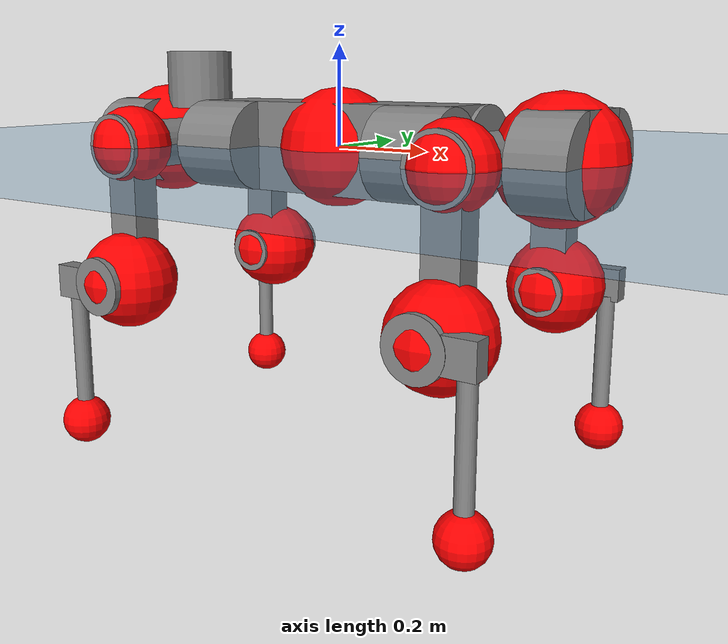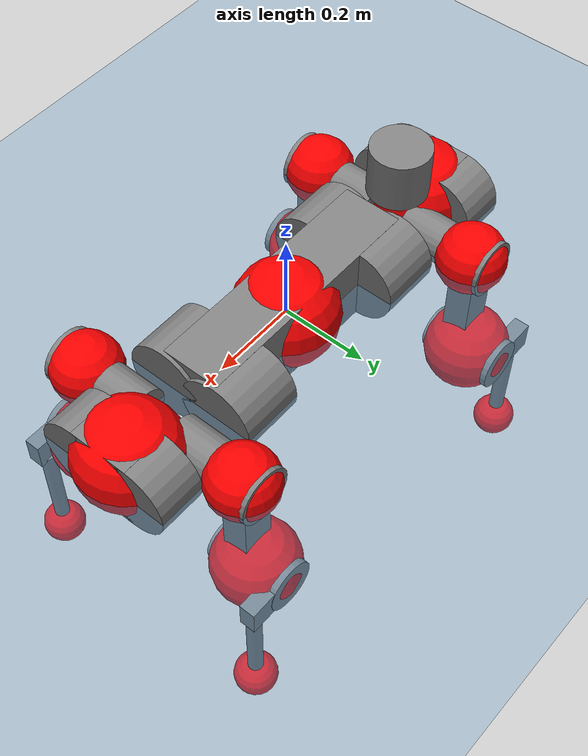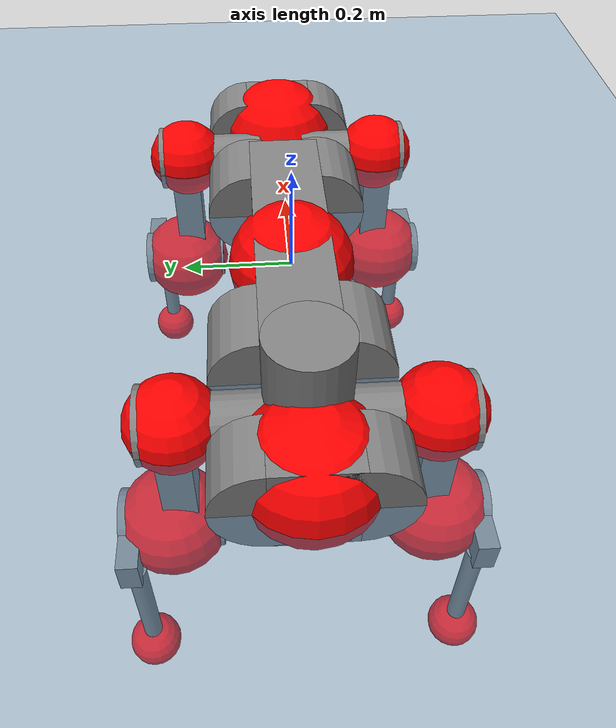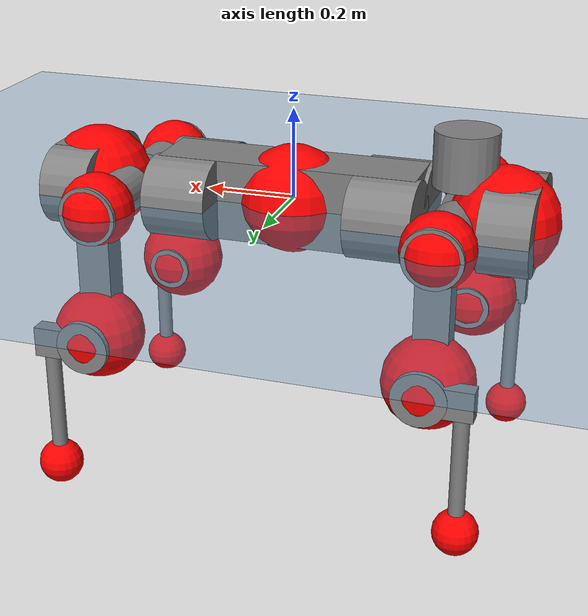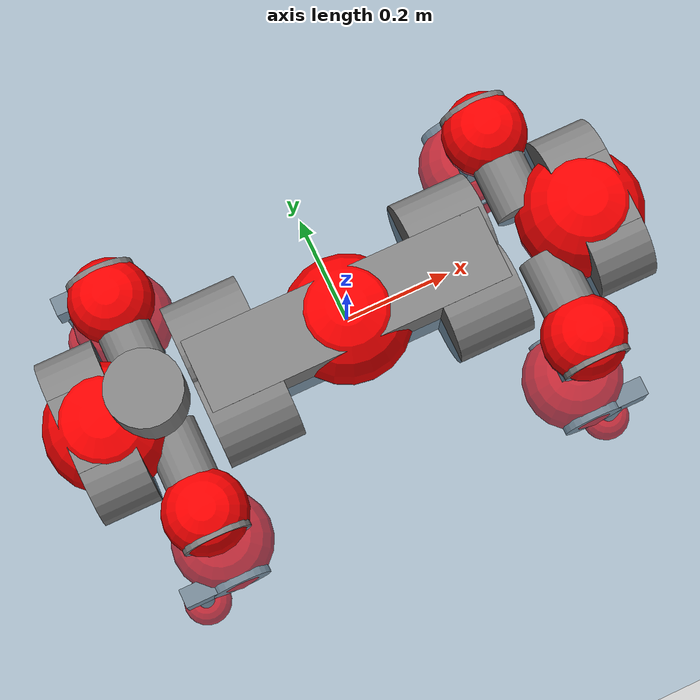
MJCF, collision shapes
<mujoco model="anymal_c">
  <compiler angle="radian" assetdir="assets" balanceinertia="true" inertiafromgeom="false"/>

  <option timestep="0.005" density="1.2" viscosity="2e-05"/>

  <size nkey="1"/>

  <visual>
    <quality shadowsize="8192"/>
    <map shadowclip="0.5"/>
  </visual>

  <default>
    <default class="/">
      <material specular="0" shininess="0.25"/>
      <geom contype="0" conaffinity="0" group="1" solref="-1000 -80"/>
      <site size="0.01 0.005 0.005" group="5"/>
      <general forcelimited="true" forcerange="-80 80" biastype="affine" gainprm="80" biasprm="0 -80 -2"/>
      <default class="anymal_c">
        <joint armature="0.01" damping="0.01" frictionloss="0.1"/>
        <default class="visual">
          <geom type="mesh" group="2"/>
          <default class="visual_zflip"/>
        </default>
        <default class="collision">
          <geom type="cylinder" group="3"/>
          <default class="foot">
            <geom size="0.03 0 0" type="sphere" condim="6" priority="1" friction="0.8 0.02 0.01" solimp="0.015 1 0.03"/>
          </default>
        </default>
      </default>
      <default class="reward_collision_sphere">
        <geom group="5" rgba="1 0 0 1"/>
      </default>
    </default>
  </default>

  <asset>
    <texture type="skybox" colorspace="auto" name="//unnamed_texture_0" builtin="gradient" rgb1="0.95 0.95 0.95" rgb2="0.95 0.95 0.95" width="100" height="600"/>
    <texture type="2d" colorspace="auto" name="texplane" builtin="checker" rgb1="0.345 0.575 0.748" rgb2="0.345 0.575 0.748" markrgb="1 1 1" width="512" height="512"/>
    <texture type="2d" colorspace="linear" name="base" file="base.png"/>
    <texture type="2d" colorspace="linear" name="top_shell" file="top_shell.png"/>
    <texture type="2d" colorspace="linear" name="bottom_shell" file="bottom_shell.png"/>
    <texture type="2d" colorspace="linear" name="remote" file="remote.png"/>
    <texture type="2d" colorspace="linear" name="hatch" file="hatch.png"/>
    <texture type="2d" colorspace="linear" name="handle" file="handle.png"/>
    <texture type="2d" colorspace="linear" name="face" file="face.png"/>
    <texture type="2d" colorspace="linear" name="battery" file="battery.png"/>
    <texture type="2d" colorspace="linear" name="lidar_cage" file="lidar_cage.png"/>
    <texture type="2d" colorspace="linear" name="depth_camera" file="depth_camera.png"/>
    <texture type="2d" colorspace="linear" name="wide_angle_camera" file="wide_angle_camera.png"/>
    <texture type="2d" colorspace="linear" name="lidar" file="lidar.png"/>
    <texture type="2d" colorspace="linear" name="drive" file="drive.png"/>
    <texture type="2d" colorspace="linear" name="hip_l" file="hip_l.png"/>
    <texture type="2d" colorspace="linear" name="shank_l" file="shank_l.png"/>
    <texture type="2d" colorspace="linear" name="foot" file="foot.png"/>
    <texture type="2d" colorspace="linear" name="thigh" file="thigh.png"/>
    <texture type="2d" colorspace="linear" name="shank_r" file="shank_r.png"/>
    <texture type="2d" colorspace="linear" name="hip_r" file="hip_r.png"/>
    <material name="MatPlane" class="/" texture="texplane" texuniform="true" texrepeat="2 2" specular="0.9" shininess="0.5"/>
    <material name="black_plastic" class="/" rgba="0.007 0.007 0.007 1"/>
    <material name="green" class="/" rgba="0.052 0.178 0.033 1"/>
    <material name="red" class="/" rgba="0.178 0.006 0.005 1"/>
    <material name="yellow" class="/" rgba="0.178 0.119 0.006 1"/>
    <material name="lwl" class="/" rgba="0.8 0.8 0.8 1"/>
    <material name="base" class="/" texture="base"/>
    <material name="top_shell" class="/" texture="top_shell"/>
    <material name="bottom_shell" class="/" texture="bottom_shell"/>
    <material name="hip_l" class="/" texture="hip_l"/>
    <material name="thigh" class="/" texture="thigh"/>
    <material name="shank_l" class="/" texture="shank_l"/>
    <material name="foot" class="/" texture="foot"/>
    <material name="hip_r" class="/" texture="hip_r"/>
    <material name="shank" class="/" texture="shank_r"/>
    <material name="hatch" class="/" texture="hatch"/>
    <material name="remote" class="/" texture="remote"/>
    <material name="handle" class="/" texture="handle"/>
    <material name="face" class="/" texture="face"/>
    <material name="depth_camera" class="/" texture="depth_camera"/>
    <material name="wide_angle_camera" class="/" texture="wide_angle_camera"/>
    <material name="battery" class="/" texture="battery"/>
    <material name="lidar_cage" class="/" texture="lidar_cage"/>
    <material name="lidar" class="/" texture="lidar"/>
    <material name="drive" class="/" texture="drive"/>
    <mesh name="base_0" class="/" file="base_0.obj"/>
    <mesh name="base_1" class="/" file="base_1.obj"/>
    <mesh name="base_2" class="/" file="base_2.obj"/>
    <mesh name="base_3" class="/" file="base_3.obj"/>
    <mesh name="base_4" class="/" file="base_4.obj"/>
    <mesh name="base_5" class="/" file="base_5.obj"/>
    <mesh name="top_shell" class="/" file="top_shell.obj"/>
    <mesh name="bottom_shell" class="/" file="bottom_shell.obj"/>
    <mesh name="remote" class="/" file="remote.obj"/>
    <mesh name="handle" class="/" file="handle.obj"/>
    <mesh name="face" class="/" file="face.obj"/>
    <mesh name="wide_angle_camera" class="/" file="wide_angle_camera.obj"/>
    <mesh name="depth_camera" class="/" file="depth_camera.obj"/>
    <mesh name="battery" class="/" file="battery.obj"/>
    <mesh name="lidar_cage" class="/" file="lidar_cage.obj"/>
    <mesh name="lidar" class="/" file="lidar.obj"/>
    <mesh name="drive" class="/" file="drive.obj"/>
    <mesh name="hip_l" class="/" file="hip_l.obj"/>
    <mesh name="thigh" class="/" file="thigh.obj"/>
    <mesh name="shank_l" class="/" file="shank_l.obj"/>
    <mesh name="foot" class="/" file="foot.obj"/>
    <mesh name="hip_r" class="/" file="hip_r.obj"/>
    <mesh name="hatch" class="/" file="hatch.obj"/>
    <mesh name="shank_r" class="/" file="shank_r.obj"/>
  </asset>

  <worldbody>
    <geom name="floor" class="/" size="100 100 0.125" type="plane" group="0" material="MatPlane"/>
    <light name="toplight_shadow" class="/" pos="0 0 5" dir="0.0990148 0.0990148 -0.990148" type="directional" ambient="0.04 0.04 0.04" diffuse="0.55 0.55 0.55" specular="0.12 0.12 0.12"/>
    <light name="toplight_fill" class="/" pos="0 0 5" dir="0.0990148 0.0990148 -0.990148" type="directional" castshadow="false" ambient="0.04 0.04 0.04" diffuse="0.3 0.3 0.3" specular="0.08 0.08 0.08"/>
    <body name="trunk" childclass="anymal_c" pos="0.00038736 -3.0572e-05 -0.000890249" quat="1 0.000145977 -0.000411266 0.00023525">
      <inertial pos="0.000264358 -0.00126733 0.0486083" quat="0.499857 0.500132 0.499974 0.500037" mass="19.0297" diaginertia="0.759172 0.532032 0.190202"/>
      <joint name="//unnamed_joint_0" type="free" armature="0" damping="0" frictionloss="0"/>
      <geom name="//unnamed_geom_1" class="visual" material="green" mesh="base_0"/>
      <geom name="//unnamed_geom_2" class="visual" material="yellow" mesh="base_1"/>
      <geom name="//unnamed_geom_3" class="visual" material="red" mesh="base_2"/>
      <geom name="//unnamed_geom_4" class="visual" material="black_plastic" mesh="base_3"/>
      <geom name="//unnamed_geom_5" class="visual" material="lwl" mesh="base_4"/>
      <geom name="//unnamed_geom_6" class="visual" material="base" mesh="base_5"/>
      <geom name="trunk_1" class="collision" size="0.287931 0.0695006 0.0893579" type="box"/>
      <geom name="trunk_2" class="collision" size="0.0893579 0.0719827" pos="0.225226 0.0678223 0" quat="0.707107 0 0.707107 0"/>
      <geom name="trunk_3" class="collision" size="0.0893579 0.0719827" pos="-0.225226 0.0678223 0" quat="0.707107 0 0.707107 0"/>
      <geom name="trunk_4" class="collision" size="0.0893579 0.0719827" pos="0.225226 -0.0678223 0" quat="0.707107 0 0.707107 0"/>
      <geom name="trunk_5" class="collision" size="0.0893579 0.0719827" pos="-0.225226 -0.0678223 0" quat="0.707107 0 0.707107 0"/>
      <geom name="//unnamed_geom_12" class="visual" material="top_shell" mesh="top_shell"/>
      <geom name="//unnamed_geom_13" class="visual" material="bottom_shell" mesh="bottom_shell"/>
      <geom name="//unnamed_geom_14" class="visual" material="remote" mesh="remote"/>
      <geom name="//unnamed_geom_15" class="visual" material="handle" mesh="handle"/>
      <geom name="//unnamed_geom_16" class="visual" pos="0.429224 0 0" quat="1 0 0 0" material="face" mesh="face"/>
      <geom name="trunk_6" class="collision" size="0.0546076 0.0695006 0.0893579" pos="0.486178 0 0" type="box"/>
      <geom name="//unnamed_geom_18" class="collision" size="0.0893579 0.0546076" pos="0.486178 0.0678223 0" quat="0.707107 0 0.707107 0"/>
      <geom name="//unnamed_geom_19" class="collision" size="0.0893579 0.0546076" pos="0.486178 -0.0678223 0" quat="0.707107 0 0.707107 0"/>
      <geom name="//unnamed_geom_20" class="visual" pos="0.478046 0 -0.02798" quat="0.965926 0 0.258819 0" material="depth_camera" mesh="depth_camera"/>
      <geom name="//unnamed_geom_21" class="visual" pos="0.531223 0 0.0145835" material="wide_angle_camera" mesh="wide_angle_camera"/>
      <geom name="//unnamed_geom_22" class="visual_zflip" pos="-0.429224 0 0" quat="0 0 0 1" material="face" mesh="face"/>
      <geom name="trunk_7" class="collision" size="0.0546076 0.0695006 0.0893579" pos="-0.486178 0 0" quat="0 0 0 1" type="box"/>
      <geom name="//unnamed_geom_24" class="collision" size="0.0893579 0.0546076" pos="-0.486178 -0.0678223 0" quat="0 -0.707107 0 0.707107"/>
      <geom name="//unnamed_geom_25" class="collision" size="0.0893579 0.0546076" pos="-0.486178 0.0678223 0" quat="0 -0.707107 0 0.707107"/>
      <geom name="//unnamed_geom_26" class="visual" pos="-0.478046 0 -0.02798" quat="0 -0.258819 0 0.965926" material="depth_camera" mesh="depth_camera"/>
      <geom name="//unnamed_geom_27" class="visual_zflip" pos="-0.531223 0 0.0145835" quat="0 0 0 1" material="wide_angle_camera" mesh="wide_angle_camera"/>
      <geom name="//unnamed_geom_28" class="visual" material="battery" mesh="battery"/>
      <geom name="//unnamed_geom_29" class="visual" pos="0 0.0732044 0.0287662" quat="0.683013 -0.183013 0.183013 0.683013" material="depth_camera" mesh="depth_camera"/>
      <geom name="//unnamed_geom_30" class="visual" pos="0 -0.0732044 0.0287662" quat="0.683013 0.183013 0.183013 -0.683013" material="depth_camera" mesh="depth_camera"/>
      <geom name="//unnamed_geom_31" class="visual" pos="-0.37693 0 0.0716025" quat="1 0 0 0" material="lidar_cage" mesh="lidar_cage"/>
      <geom name="trunk_8" class="collision" size="0.0695006 0.0595719" pos="-0.37693 0 0.130054"/>
      <geom name="//unnamed_geom_33" class="visual" pos="-0.37693 -2.61781e-05 0.138529" quat="0.707107 0 0 -0.707107" material="lidar" mesh="lidar"/>
      <geom name="//unnamed_geom_34" class="visual" pos="0.310553 0.100766 -9.13154e-11" quat="0.258819 0.965926 0 0" material="drive" mesh="drive"/>
      <geom name="//unnamed_geom_35" class="visual" pos="0.310553 -0.100766 9.13154e-11" quat="0.258819 -0.965926 0 0" material="drive" mesh="drive"/>
      <geom name="//unnamed_geom_36" class="visual" pos="-0.310553 0.100766 9.13154e-11" quat="0 0 0.965926 -0.258819" material="drive" mesh="drive"/>
      <geom name="//unnamed_geom_37" class="visual" pos="-0.310553 -0.100766 -9.13154e-11" quat="0 0 -0.965926 -0.258819" material="drive" mesh="drive"/>
      <geom name="//unnamed_geom_38" class="visual" pos="0.120121 0 0.0711154" quat="1 0 0 0" material="hatch" mesh="hatch"/>
      <geom name="//unnamed_geom_39" class="reward_collision_sphere" size="0.119144"/>
      <geom name="//unnamed_geom_40" class="reward_collision_sphere" size="0.119144" pos="0.465985 0 0"/>
      <geom name="//unnamed_geom_41" class="reward_collision_sphere" size="0.119144" pos="-0.465985 0 0"/>
      <site name="imu" pos="0.265376 0.00828319 0.0374505" size="0.00992866"/>
      <camera name="track" pos="0 -1.93778 0" quat="0.707107 0.707107 0 0" mode="trackcom"/>
      <camera name="ego_camera" pos="0.465985 0 -0.0389674" quat="-0.5 -0.5 0.5 0.5"/>
      <body name="LF_HIP" pos="0.310758 0.100874 0.000339765" quat="0.258793 0.965933 -6.55176e-05 -0.000224145">
        <inertial pos="0.0586226 -0.0147614 -0.00839063" quat="-0.128174 0.709693 -0.135171 0.679438" mass="2.62047" diaginertia="0.00677382 0.00405342 0.00280512"/>
        <joint name="LF_HAA" pos="0 0 0" axis="0.999994 0.00270431 0.00222359" range="-0.720559 0.469348" armature="0.00985823" damping="0.00742221" frictionloss="0.100307"/>
        <geom name="//unnamed_geom_42" class="visual" pos="0 -5.37167e-06 8.82292e-07" quat="0.258819 -0.965926 0 0" material="hip_l" mesh="hip_l"/>
        <geom name="//unnamed_geom_43" class="visual" pos="0.0620278 -0.0742844 -0.0429273" quat="0.183013 -0.683013 0.683013 0.183013" material="drive" mesh="drive"/>
        <geom name="//unnamed_geom_44" class="collision" size="0.0496433 0.0695006" pos="0.0620278 -0.0115877 -0.00672674" quat="-0.353553 -0.612372 0.612372 -0.353553"/>
        <body name="LF_THIGH" pos="0.0631188 -0.0691431 -0.0414373" quat="0.182678 -0.682964 0.683001 0.183573">
          <inertial pos="0.0320657 0.000157685 -0.240071" quat="0.993316 -0.00559505 -0.0784578 0.0844791" mass="2.9899" diaginertia="0.0358551 0.0247697 0.00362106"/>
          <joint name="LF_HFE" pos="0 0 0" axis="1 0.000655061 -0.000523201" stiffness="0.00491739" range="-3.12316 3.13242" armature="0.0100951" damping="0.0106104" frictionloss="0.102794"/>
          <geom name="//unnamed_geom_45" class="visual" pos="0.00132572 2.08903e-06 0" quat="0.707107 0 0 -0.707107" material="thigh" mesh="thigh"/>
          <geom name="//unnamed_geom_46" class="collision" size="0.0645363 0.0397146" pos="0.0414209 0 0" quat="0.5 0.5 -0.5 -0.5"/>
          <geom name="//unnamed_geom_47" class="collision" size="0.0372325 0.029786 0.140306" pos="0.0310657 0 -0.137666" quat="0.707107 0 0 -0.707107" type="box"/>
          <geom name="//unnamed_geom_48" class="visual" pos="0.103863 0 -0.277642" quat="1 0 0 0" material="drive" mesh="drive"/>
          <geom name="//unnamed_geom_49" class="collision" size="0.0496433 0.0695006" pos="0.0313763 0 -0.277642" quat="0.707107 0 0.707107 0"/>
          <geom name="//unnamed_geom_50" class="reward_collision_sphere" size="0.0794292" pos="0.0258881 0 0"/>
          <body name="LF_SHANK" pos="0.103443 0.000767777 -0.278556" quat="1 -7.11025e-05 -1.75249e-05 -9.25787e-05">
            <inertial pos="0.00546181 -0.0593675 -0.0776642" quat="0.992824 -0.116975 -0.00168452 -0.0247982" mass="0.575164" diaginertia="0.0119334 0.00790531 0.000978763"/>
            <joint name="LF_KFE" pos="0 0 0" axis="0.999995 -0.00210027 -0.00249642" range="-3.14667 3.13915" armature="0.00953298" damping="0.0122566" frictionloss="0.0983312"/>
            <geom name="//unnamed_geom_51" class="visual" pos="0.000432289 0.00230499 0" quat="0.707107 0 0 -0.707107" material="shank_l" mesh="shank_l"/>
            <geom name="LF_kfe_act" class="collision" size="0.0595719 0.0198573" pos="0.0207105 0 0" quat="0.5 0.5 -0.5 -0.5"/>
            <geom name="//unnamed_geom_53" class="collision" size="0.0570888 0.0335092 0.0188644" pos="0.0207105 -0.0557102 0" quat="0.5 0.5 -0.5 -0.5" type="box"/>
            <geom name="//unnamed_geom_54" class="visual" pos="0.0135135 -0.0844711 -0.329245" quat="0.382683 0 0 -0.92388" material="foot" mesh="foot"/>
            <geom name="LF_calf" class="collision" size="0.0173751 0.140244" pos="0.0135136 -0.0852139 -0.164622" quat="0.707107 0 0 -0.707107"/>
            <geom name="LF_foot" class="foot" size="0.0296749" pos="0.0135136 -0.0852139 -0.307326" quat="0.707107 0 0 -0.707107"/>
            <geom name="//unnamed_geom_57" class="reward_collision_sphere" size="0.0992866" pos="-0.0517761 0 0"/>
            <geom name="//unnamed_geom_58" class="reward_collision_sphere" size="0.0496433" pos="0.0135136 -0.0852139 -0.307326"/>
            <site name="LF_foot" class="foot" pos="0.0135136 -0.0852139 -0.307326" quat="0.707107 0 0 -0.707107" size="0.00992866"/>
          </body>
        </body>
      </body>
      <body name="RF_HIP" pos="0.30955 -0.101006 0.000793181" quat="0.25878 -0.965936 7.03783e-05 3.9054e-05">
        <inertial pos="0.0592499 0.0130991 -0.00792801" quat="0.132521 0.681572 0.136153 0.706654" mass="2.72339" diaginertia="0.00695809 0.00429868 0.00288961"/>
        <joint name="RF_HAA" pos="0 0 0" axis="1 -0.000425295 -0.000763701" range="-0.484153 0.722702" armature="0.0101347" damping="0.0070625" frictionloss="0.0945998"/>
        <geom name="//unnamed_geom_59" class="visual" pos="0 5.37163e-06 8.8229e-07" quat="0.258819 0.965926 0 0" material="hip_r" mesh="hip_r"/>
        <geom name="//unnamed_geom_60" class="visual" pos="0.0620278 0.0742844 -0.0429273" quat="0.183013 0.683013 0.683013 -0.183013" material="drive" mesh="drive"/>
        <geom name="//unnamed_geom_61" class="collision" size="0.0496433 0.0695006" pos="0.0620278 0.0115877 -0.00672674" quat="-0.353553 0.612372 0.612372 0.353553"/>
        <body name="RF_THIGH" pos="0.0615635 0.0711469 -0.0421356" quat="0.18278 0.68303 0.683096 -0.182869">
          <inertial pos="0.0336055 0.00070193 -0.238303" quat="0.992968 -0.00263806 -0.079185 0.0879603" mass="3.01702" diaginertia="0.036115 0.0252012 0.00373459"/>
          <joint name="RF_HFE" pos="0 0 0" axis="1 0.000104398 0.000280037" stiffness="0.00496857" range="-3.15903 3.13424" armature="0.0100773" damping="0.0104946" frictionloss="0.0943148"/>
          <geom name="//unnamed_geom_62" class="visual" pos="0.00132572 2.08903e-06 0" quat="0.707107 0 0 -0.707107" material="thigh" mesh="thigh"/>
          <geom name="//unnamed_geom_63" class="collision" size="0.0645363 0.0397146" pos="0.0414209 0 0" quat="0.5 0.5 0.5 0.5"/>
          <geom name="//unnamed_geom_64" class="collision" size="0.0372325 0.029786 0.140306" pos="0.0310657 0 -0.137666" quat="0.707107 0 0 0.707107" type="box"/>
          <geom name="//unnamed_geom_65" class="visual" pos="0.103863 0 -0.277642" quat="1 0 0 0" material="drive" mesh="drive"/>
          <geom name="//unnamed_geom_66" class="collision" size="0.0496433 0.0695006" pos="0.0313763 0 -0.277642" quat="0.707107 0 0.707107 0"/>
          <geom name="//unnamed_geom_67" class="reward_collision_sphere" size="0.0794292" pos="0.0258881 0 0"/>
          <body name="RF_SHANK" pos="0.104254 0.000625186 -0.277305" quat="1 -0.0001399 -0.000277523 -8.29685e-05">
            <inertial pos="0.00556532 0.0593403 -0.0784757" quat="0.992479 0.117467 0.000730801 0.0344503" mass="0.574952" diaginertia="0.0120237 0.00803379 0.000990834"/>
            <joint name="RF_KFE" pos="0 0 0" axis="0.999995 0.00306227 0.00067026" range="-3.16514 3.14725" armature="0.0102625" damping="0.0162019" frictionloss="0.0943696"/>
            <geom name="//unnamed_geom_68" class="visual" pos="0.000432287 -0.00230498 0" quat="0.707107 0 0 0.707107" material="shank" mesh="shank_r"/>
            <geom name="RF_kfe_act" class="collision" size="0.0595719 0.0198573" pos="0.0207105 0 0" quat="0.5 0.5 0.5 0.5"/>
            <geom name="//unnamed_geom_70" class="collision" size="0.0570888 0.0335092 0.0188644" pos="0.0207105 0.0557102 0" quat="0.5 0.5 0.5 0.5" type="box"/>
            <geom name="//unnamed_geom_71" class="visual" pos="0.0135137 0.0844711 -0.329245" quat="0.382683 0 0 0.92388" material="foot" mesh="foot"/>
            <geom name="RF_calf" class="collision" size="0.0173751 0.140244" pos="0.0135136 0.0852139 -0.164622" quat="0.707107 0 0 0.707107"/>
            <geom name="RF_foot" class="foot" size="0.0281616" pos="0.0135136 0.0852139 -0.307326" quat="0.707107 0 0 0.707107"/>
            <geom name="//unnamed_geom_74" class="reward_collision_sphere" size="0.0992866" pos="-0.0517761 0 0"/>
            <geom name="//unnamed_geom_75" class="reward_collision_sphere" size="0.0496433" pos="0.0135136 0.0852139 -0.307326"/>
            <site name="RF_foot" class="foot" pos="0.0135136 0.0852139 -0.307326" quat="0.707107 0 0 0.707107" size="0.00992866"/>
          </body>
        </body>
      </body>
      <body name="LH_HIP" pos="-0.308599 0.101032 -0.000347206" quat="-6.44442e-05 -2.31893e-06 0.965919 -0.258844">
        <inertial pos="0.0587074 0.0144319 -0.00993038" quat="0.136413 0.680894 0.127785 0.708129" mass="2.7815" diaginertia="0.00731618 0.00429289 0.00297676"/>
        <joint name="LH_HAA" pos="0 0 0" axis="0.999986 -0.00299884 -0.00430765" range="-0.488259 0.70327" armature="0.00970654" damping="0.000471218" frictionloss="0.0997922"/>
        <geom name="//unnamed_geom_76" class="visual" pos="0 5.37163e-06 8.8229e-07" quat="-0.258819 -0.965926 0 0" material="hip_r" mesh="hip_r"/>
        <geom name="//unnamed_geom_77" class="visual" pos="0.0620278 0.0742844 -0.0429273" quat="0.183013 0.683013 0.683013 -0.183013" material="drive" mesh="drive"/>
        <geom name="//unnamed_geom_78" class="collision" size="0.0496433 0.0695006" pos="0.0620278 0.0115877 -0.00672674" quat="-0.353553 0.612372 0.612372 0.353553"/>
        <body name="LH_THIGH" pos="0.0615468 0.0713243 -0.0420841" quat="0.182909 0.683024 0.682888 -0.183537">
          <inertial pos="0.029872 -0.000888113 -0.240909" quat="0.992783 -0.0051063 -0.0807138 0.0885486" mass="3.04221" diaginertia="0.035118 0.0255109 0.00362733"/>
          <joint name="LH_HFE" pos="0 0 0" axis="1 -8.9448e-06 0.000136789" stiffness="0.000717452" range="-3.12485 3.14451" armature="0.00997676" damping="0.00689204" frictionloss="0.100092"/>
          <geom name="//unnamed_geom_79" class="visual" pos="0.00132572 2.08903e-06 0" quat="0.707107 0 0 -0.707107" material="thigh" mesh="thigh"/>
          <geom name="//unnamed_geom_80" class="collision" size="0.0645363 0.0397146" pos="0.0414209 0 0" quat="0.5 0.5 -0.5 -0.5"/>
          <geom name="//unnamed_geom_81" class="collision" size="0.0372325 0.029786 0.140306" pos="0.0310657 0 -0.137666" quat="0.707107 0 0 -0.707107" type="box"/>
          <geom name="//unnamed_geom_82" class="visual" pos="0.103863 0 -0.277642" quat="1 0 0 0" material="drive" mesh="drive"/>
          <geom name="//unnamed_geom_83" class="collision" size="0.0496433 0.0695006" pos="0.0313763 0 -0.277642" quat="0.707107 0 0.707107 0"/>
          <geom name="//unnamed_geom_84" class="reward_collision_sphere" size="0.0794292" pos="0.0258881 0 0"/>
          <body name="LH_SHANK" pos="0.104509 -0.00143525 -0.276619" quat="1 -1.83081e-05 -6.43608e-05 -6.49234e-05">
            <inertial pos="0.00479447 0.060396 -0.0777525" quat="0.992696 0.117967 -0.00148113 0.0252366" mass="0.59192" diaginertia="0.0124529 0.0082068 0.000999446"/>
            <joint name="LH_KFE" pos="0 0 0" axis="0.999988 0.00210882 -0.00446982" range="-3.12619 3.14205" armature="0.0106935" damping="0.0151603" frictionloss="0.0954074"/>
            <geom name="//unnamed_geom_85" class="visual" pos="0.000432287 -0.00230498 0" quat="-0.707107 0 0 -0.707107" material="shank" mesh="shank_r"/>
            <geom name="LH_kfe_act" class="collision" size="0.0595719 0.0198573" pos="0.0207105 0 0" quat="0.5 0.5 -0.5 -0.5"/>
            <geom name="//unnamed_geom_87" class="collision" size="0.0570888 0.0335092 0.0188644" pos="0.0207105 0.0557102 0" quat="0.5 0.5 -0.5 -0.5" type="box"/>
            <geom name="//unnamed_geom_88" class="visual" pos="0.0135137 0.0844711 -0.329245" quat="-0.382683 0 0 -0.92388" material="foot" mesh="foot"/>
            <geom name="LH_calf" class="collision" size="0.0173751 0.140244" pos="0.0135136 0.0852139 -0.164622" quat="0.707107 0 0 -0.707107"/>
            <geom name="LH_foot" class="foot" size="0.0295683" pos="0.0135136 0.0852139 -0.307326" quat="0.707107 0 0 -0.707107"/>
            <geom name="//unnamed_geom_91" class="reward_collision_sphere" size="0.0992866" pos="-0.0517761 0 0"/>
            <geom name="//unnamed_geom_92" class="reward_collision_sphere" size="0.0496433" pos="0.0135136 0.0852139 -0.307326"/>
            <site name="LH_foot" class="foot" pos="0.0135136 0.0852139 -0.307326" quat="0.707107 0 0 -0.707107" size="0.00992866"/>
          </body>
        </body>
      </body>
      <body name="RH_HIP" pos="-0.308383 -0.100591 -0.000317784" quat="-9.0111e-05 4.25551e-05 -0.965926 -0.258817">
        <inertial pos="0.0592503 -0.0157198 -0.0100917" quat="-0.134989 0.704741 -0.130561 0.684158" mass="2.67807" diaginertia="0.00678551 0.0040836 0.00281859"/>
        <joint name="RH_HAA" pos="0 0 0" axis="0.999962 0.0078145 -0.00392883" range="-0.750178 0.47659" armature="0.0103934" damping="0.0131026" frictionloss="0.0996829"/>
        <geom name="//unnamed_geom_93" class="visual" pos="0 -5.37167e-06 8.82292e-07" quat="-0.258819 0.965926 0 0" material="hip_l" mesh="hip_l"/>
        <geom name="//unnamed_geom_94" class="visual" pos="0.0620278 -0.0742844 -0.0429273" quat="-0.183013 0.683013 -0.683013 -0.183013" material="drive" mesh="drive"/>
        <geom name="//unnamed_geom_95" class="collision" size="0.0496433 0.0695006" pos="0.0620278 -0.0115877 -0.00672674" quat="0.353553 0.612372 -0.612372 0.353553"/>
        <body name="RH_THIGH" pos="0.063735 -0.0711195 -0.0424467" quat="-0.182708 0.68305 -0.683099 -0.182856">
          <inertial pos="0.0319964 -0.000675992 -0.239436" quat="0.993146 -0.00552473 -0.0808262 0.084248" mass="3.00971" diaginertia="0.0360531 0.0255366 0.00366596"/>
          <joint name="RH_HFE" pos="0 0 0" axis="1 -4.4505e-05 0.000250499" range="-3.15144 3.15319" armature="0.00978515" damping="0.00419343" frictionloss="0.0982202"/>
          <geom name="//unnamed_geom_96" class="visual" pos="0.00132572 2.08903e-06 0" quat="0.707107 0 0 -0.707107" material="thigh" mesh="thigh"/>
          <geom name="//unnamed_geom_97" class="collision" size="0.0645363 0.0397146" pos="0.0414209 0 0" quat="0.5 0.5 0.5 0.5"/>
          <geom name="//unnamed_geom_98" class="collision" size="0.0372325 0.029786 0.140306" pos="0.0310657 0 -0.137666" quat="0.707107 0 0 0.707107" type="box"/>
          <geom name="//unnamed_geom_99" class="visual" pos="0.103863 0 -0.277642" quat="1 0 0 0" material="drive" mesh="drive"/>
          <geom name="//unnamed_geom_100" class="collision" size="0.0496433 0.0695006" pos="0.0313763 0 -0.277642" quat="0.707107 0 0.707107 0"/>
          <geom name="//unnamed_geom_101" class="reward_collision_sphere" size="0.0794292" pos="0.0258881 0 0"/>
          <body name="RH_SHANK" pos="0.103864 0.00125776 -0.27724" quat="1 0.000657181 0.000253876 -7.19503e-05">
            <inertial pos="0.00647617 -0.0582478 -0.0790936" quat="0.992997 -0.11502 -0.00203861 -0.0268781" mass="0.583834" diaginertia="0.0122918 0.00788979 0.000992621"/>
            <joint name="RH_KFE" pos="0 0 0" axis="1 -0.000289954 0.000815508" stiffness="0.00106127" range="-3.12332 3.16149" armature="0.00996348" damping="0.0161235" frictionloss="0.0943457"/>
            <geom name="//unnamed_geom_102" class="visual" pos="0.000432289 0.00230499 0" quat="0.707107 0 0 -0.707107" material="shank_l" mesh="shank_l"/>
            <geom name="RH_kfe_act" class="collision" size="0.0595719 0.0198573" pos="0.0207105 0 0" quat="0.5 0.5 0.5 0.5"/>
            <geom name="//unnamed_geom_104" class="collision" size="0.0570888 0.0335092 0.0188644" pos="0.0207105 -0.0557102 0" quat="0.5 0.5 0.5 0.5" type="box"/>
            <geom name="//unnamed_geom_105" class="visual" pos="0.0135135 -0.0844711 -0.329245" quat="0.382683 0 0 -0.92388" material="foot" mesh="foot"/>
            <geom name="RH_calf" class="collision" size="0.0173751 0.140244" pos="0.0135136 -0.0852139 -0.164622" quat="0.707107 0 0 0.707107"/>
            <geom name="RH_foot" class="foot" size="0.0283931" pos="0.0135136 -0.0852139 -0.307326" quat="0.707107 0 0 0.707107"/>
            <geom name="//unnamed_geom_108" class="reward_collision_sphere" size="0.0992866" pos="-0.0517761 0 0"/>
            <geom name="//unnamed_geom_109" class="reward_collision_sphere" size="0.0496433" pos="0.0135136 -0.0852139 -0.307326"/>
            <site name="RH_foot" class="foot" pos="0.0135136 -0.0852139 -0.307326" quat="0.707107 0 0 0.707107" size="0.00992866"/>
          </body>
        </body>
      </body>
    </body>
  </worldbody>

  <contact>
    <pair class="/" geom1="floor" geom2="LF_foot" name="//unnamed_contact_0"/>
    <pair class="/" geom1="floor" geom2="RF_foot" name="//unnamed_contact_1"/>
    <pair class="/" geom1="floor" geom2="LH_foot" name="//unnamed_contact_2"/>
    <pair class="/" geom1="floor" geom2="RH_foot" name="//unnamed_contact_3"/>
  </contact>

  <actuator>
    <general name="LF_HAA" class="/" joint="LF_HAA" forcerange="-79.3335 79.3335" gainprm="81.4454" biasprm="0 -81.4454 -1.93266"/>
    <general name="LF_HFE" class="/" joint="LF_HFE" forcerange="-74.4863 74.4863" gainprm="81.4454" biasprm="0 -81.4454 -1.93266"/>
    <general name="LF_KFE" class="/" joint="LF_KFE" forcerange="-81.8962 81.8962" gainprm="81.4454" biasprm="0 -81.4454 -1.93266"/>
    <general name="RF_HAA" class="/" joint="RF_HAA" forcerange="-79.9691 79.9691" gainprm="81.4454" biasprm="0 -81.4454 -1.93266"/>
    <general name="RF_HFE" class="/" joint="RF_HFE" forcerange="-81.7547 81.7547" gainprm="81.4454" biasprm="0 -81.4454 -1.93266"/>
    <general name="RF_KFE" class="/" joint="RF_KFE" forcerange="-79.1579 79.1579" gainprm="81.4454" biasprm="0 -81.4454 -1.93266"/>
    <general name="LH_HAA" class="/" joint="LH_HAA" forcerange="-79.9573 79.9573" gainprm="81.4454" biasprm="0 -81.4454 -1.93266"/>
    <general name="LH_HFE" class="/" joint="LH_HFE" forcerange="-79.819 79.819" gainprm="81.4454" biasprm="0 -81.4454 -1.93266"/>
    <general name="LH_KFE" class="/" joint="LH_KFE" forcerange="-77.1302 77.1302" gainprm="81.4454" biasprm="0 -81.4454 -1.93266"/>
    <general name="RH_HAA" class="/" joint="RH_HAA" forcerange="-78.6869 78.6869" gainprm="81.4454" biasprm="0 -81.4454 -1.93266"/>
    <general name="RH_HFE" class="/" joint="RH_HFE" forcerange="-83.1889 83.1889" gainprm="81.4454" biasprm="0 -81.4454 -1.93266"/>
    <general name="RH_KFE" class="/" joint="RH_KFE" forcerange="-79.3207 79.3207" gainprm="81.4454" biasprm="0 -81.4454 -1.93266"/>
  </actuator>

  <sensor>
    <gyro site="imu" name="imu_angular_velocity"/>
    <velocimeter site="imu" name="imu_linear_velocity"/>
    <framelinvel objtype="site" objname="LF_foot" name="LF_foot_global_linear_velocity"/>
    <framelinvel objtype="site" objname="RF_foot" name="RF_foot_global_linear_velocity"/>
    <framelinvel objtype="site" objname="LH_foot" name="LH_foot_global_linear_velocity"/>
    <framelinvel objtype="site" objname="RH_foot" name="RH_foot_global_linear_velocity"/>
  </sensor>

  <keyframe>
    <key name="home" qpos="0 0 0.55 1 0 0 0 0 0.4 -0.8 0 -0.4 0.8 0 -0.4 0.8 0 0.4 -0.8"/>
  </keyframe>
</mujoco>
